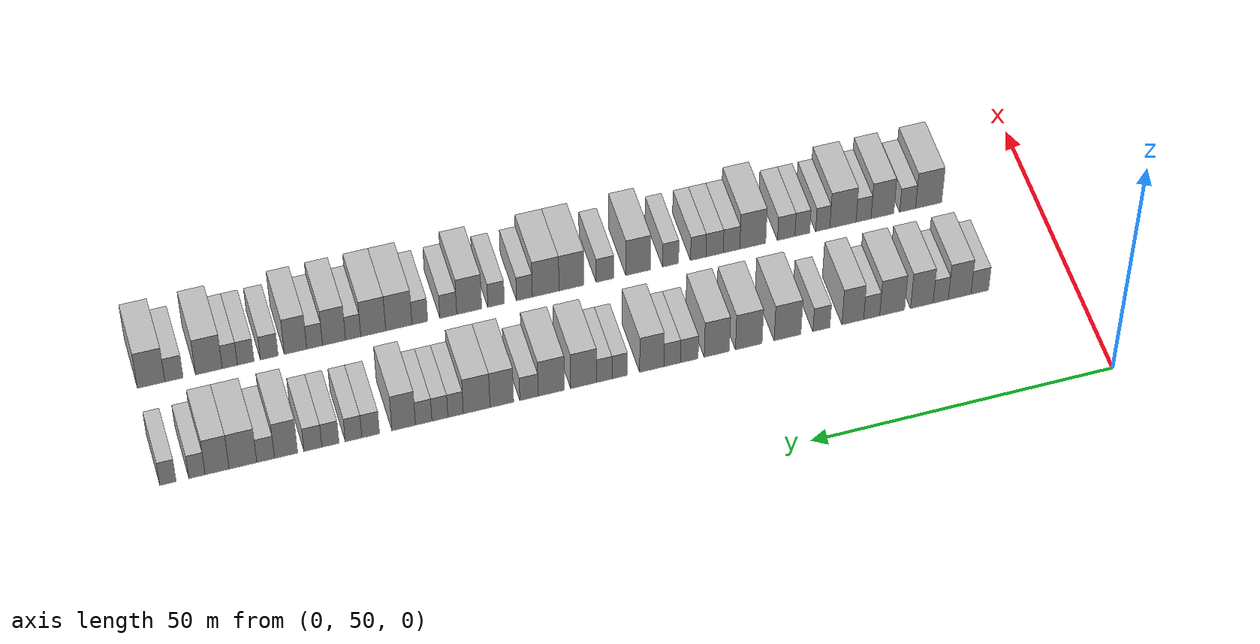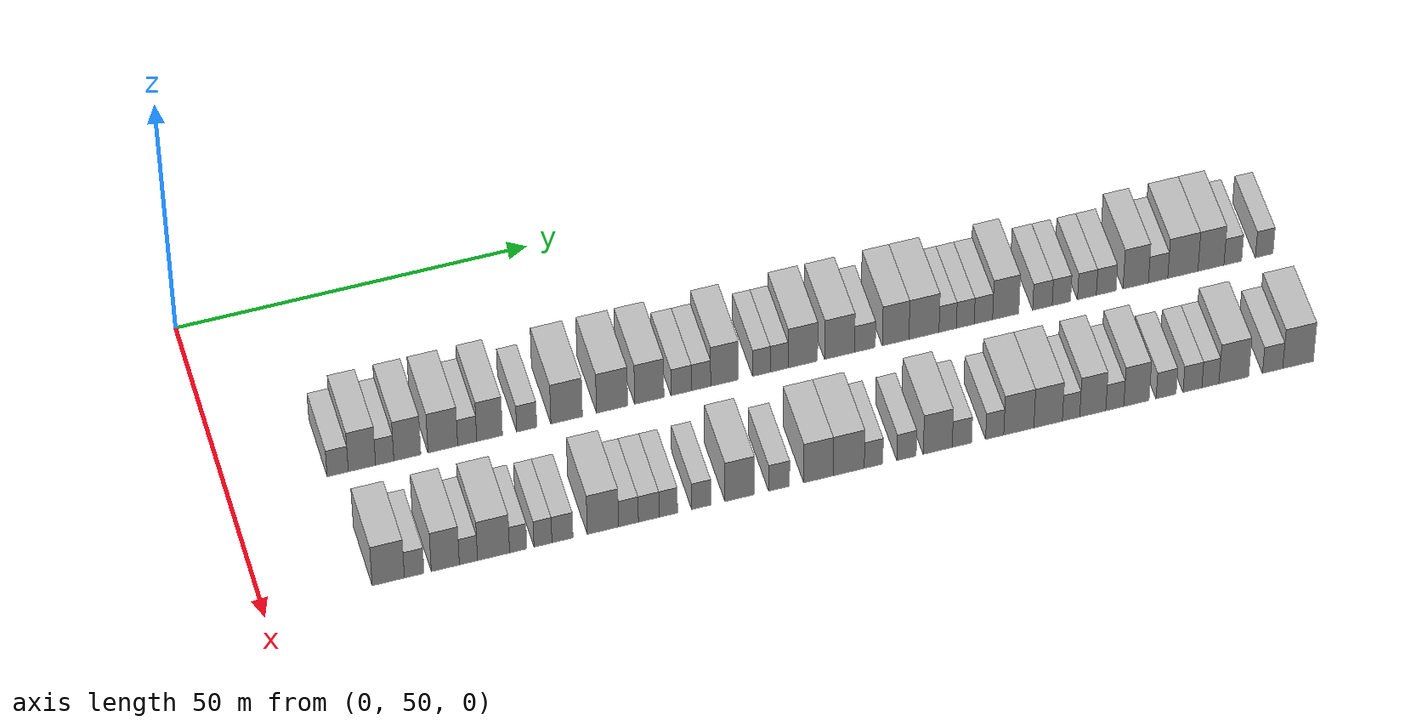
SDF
<sdf version="1.6">
 <world name="default">
  <model name="building_68">
   <static>1</static>
   <pose>25.0000 65.1902 0 0.000000 0.000000 0.000000</pose>
   <link name="link">
    <pose>0 0 3.00 0 0 0</pose>
    <collision name="collision"><geometry><box><size>10.0000 2.9733 6.0000</size></box></geometry></collision>
    <visual name="visual">
     <cast_shadows>0</cast_shadows>
     <geometry><box><size>10.0000 2.9733 6.0000</size></box></geometry>
     <material>
      <script>
       <uri>model://HANNAS_wall/materials/scripts</uri>
       <uri>model://HANNAS_wall/materials/textures</uri>
       <name>vrc/HANNAS_wall</name>
      </script>
     </material>
    </visual>
   </link>
  </model>
  <model name="building_69">
   <static>1</static>
   <pose>25.0000 68.5899 0 0.000000 0.000000 0.000000</pose>
   <link name="link">
    <pose>0 0 4.50 0 0 0</pose>
    <collision name="collision"><geometry><box><size>10.0000 3.8260 9.0000</size></box></geometry></collision>
    <visual name="visual">
     <cast_shadows>0</cast_shadows>
     <geometry><box><size>10.0000 3.8260 9.0000</size></box></geometry>
     <material>
      <script>
       <uri>model://HANNAS_wall/materials/scripts</uri>
       <uri>model://HANNAS_wall/materials/textures</uri>
       <name>vrc/HANNAS_wall</name>
      </script>
     </material>
    </visual>
   </link>
  </model>
  <model name="building_70">
   <static>1</static>
   <pose>25.0000 71.7838 0 0.000000 0.000000 0.000000</pose>
   <link name="link">
    <pose>0 0 3.00 0 0 0</pose>
    <collision name="collision"><geometry><box><size>10.0000 2.5617 6.0000</size></box></geometry></collision>
    <visual name="visual">
     <cast_shadows>0</cast_shadows>
     <geometry><box><size>10.0000 2.5617 6.0000</size></box></geometry>
     <material>
      <script>
       <uri>model://HANNAS_wall/materials/scripts</uri>
       <uri>model://HANNAS_wall/materials/textures</uri>
       <name>vrc/HANNAS_wall</name>
      </script>
     </material>
    </visual>
   </link>
  </model>
  <model name="building_71">
   <static>1</static>
   <pose>25.0000 74.9590 0 0.000000 0.000000 0.000000</pose>
   <link name="link">
    <pose>0 0 4.50 0 0 0</pose>
    <collision name="collision"><geometry><box><size>10.0000 3.7886 9.0000</size></box></geometry></collision>
    <visual name="visual">
     <cast_shadows>0</cast_shadows>
     <geometry><box><size>10.0000 3.7886 9.0000</size></box></geometry>
     <material>
      <script>
       <uri>model://HANNAS_wall/materials/scripts</uri>
       <uri>model://HANNAS_wall/materials/textures</uri>
       <name>vrc/HANNAS_wall</name>
      </script>
     </material>
    </visual>
   </link>
  </model>
  <model name="building_72">
   <static>1</static>
   <pose>25.0000 79.9435 0 0.000000 0.000000 0.000000</pose>
   <link name="link">
    <pose>0 0 4.50 0 0 0</pose>
    <collision name="collision"><geometry><box><size>10.0000 4.1804 9.0000</size></box></geometry></collision>
    <visual name="visual">
     <cast_shadows>0</cast_shadows>
     <geometry><box><size>10.0000 4.1804 9.0000</size></box></geometry>
     <material>
      <script>
       <uri>model://HANNAS_wall/materials/scripts</uri>
       <uri>model://HANNAS_wall/materials/textures</uri>
       <name>vrc/HANNAS_wall</name>
      </script>
     </material>
    </visual>
   </link>
  </model>
  <model name="building_73">
   <static>1</static>
   <pose>25.0000 83.3761 0 0.000000 0.000000 0.000000</pose>
   <link name="link">
    <pose>0 0 3.00 0 0 0</pose>
    <collision name="collision"><geometry><box><size>10.0000 2.6849 6.0000</size></box></geometry></collision>
    <visual name="visual">
     <cast_shadows>0</cast_shadows>
     <geometry><box><size>10.0000 2.6849 6.0000</size></box></geometry>
     <material>
      <script>
       <uri>model://HANNAS_wall/materials/scripts</uri>
       <uri>model://HANNAS_wall/materials/textures</uri>
       <name>vrc/HANNAS_wall</name>
      </script>
     </material>
    </visual>
   </link>
  </model>
  <model name="building_74">
   <static>1</static>
   <pose>25.0000 86.5325 0 0.000000 0.000000 0.000000</pose>
   <link name="link">
    <pose>0 0 4.50 0 0 0</pose>
    <collision name="collision"><geometry><box><size>10.0000 3.6280 9.0000</size></box></geometry></collision>
    <visual name="visual">
     <cast_shadows>0</cast_shadows>
     <geometry><box><size>10.0000 3.6280 9.0000</size></box></geometry>
     <material>
      <script>
       <uri>model://HANNAS_wall/materials/scripts</uri>
       <uri>model://HANNAS_wall/materials/textures</uri>
       <name>vrc/HANNAS_wall</name>
      </script>
     </material>
    </visual>
   </link>
  </model>
  <model name="building_75">
   <static>1</static>
   <pose>25.0000 91.7664 0 0.000000 0.000000 0.000000</pose>
   <link name="link">
    <pose>0 0 3.00 0 0 0</pose>
    <collision name="collision"><geometry><box><size>10.0000 2.8398 6.0000</size></box></geometry></collision>
    <visual name="visual">
     <cast_shadows>0</cast_shadows>
     <geometry><box><size>10.0000 2.8398 6.0000</size></box></geometry>
     <material>
      <script>
       <uri>model://HANNAS_wall/materials/scripts</uri>
       <uri>model://HANNAS_wall/materials/textures</uri>
       <name>vrc/HANNAS_wall</name>
      </script>
     </material>
    </visual>
   </link>
  </model>
  <model name="building_76">
   <static>1</static>
   <pose>25.0000 97.4119 0 0.000000 0.000000 0.000000</pose>
   <link name="link">
    <pose>0 0 4.50 0 0 0</pose>
    <collision name="collision"><geometry><box><size>10.0000 4.4512 9.0000</size></box></geometry></collision>
    <visual name="visual">
     <cast_shadows>0</cast_shadows>
     <geometry><box><size>10.0000 4.4512 9.0000</size></box></geometry>
     <material>
      <script>
       <uri>model://HANNAS_wall/materials/scripts</uri>
       <uri>model://HANNAS_wall/materials/textures</uri>
       <name>vrc/HANNAS_wall</name>
      </script>
     </material>
    </visual>
   </link>
  </model>
  <model name="building_77">
   <static>1</static>
   <pose>25.0000 103.8426 0 0.000000 0.000000 0.000000</pose>
   <link name="link">
    <pose>0 0 4.50 0 0 0</pose>
    <collision name="collision"><geometry><box><size>10.0000 4.4103 9.0000</size></box></geometry></collision>
    <visual name="visual">
     <cast_shadows>0</cast_shadows>
     <geometry><box><size>10.0000 4.4103 9.0000</size></box></geometry>
     <material>
      <script>
       <uri>model://HANNAS_wall/materials/scripts</uri>
       <uri>model://HANNAS_wall/materials/textures</uri>
       <name>vrc/HANNAS_wall</name>
      </script>
     </material>
    </visual>
   </link>
  </model>
  <model name="building_78">
   <static>1</static>
   <pose>25.0000 109.1244 0 0.000000 0.000000 0.000000</pose>
   <link name="link">
    <pose>0 0 4.50 0 0 0</pose>
    <collision name="collision"><geometry><box><size>10.0000 4.1532 9.0000</size></box></geometry></collision>
    <visual name="visual">
     <cast_shadows>0</cast_shadows>
     <geometry><box><size>10.0000 4.1532 9.0000</size></box></geometry>
     <material>
      <script>
       <uri>model://HANNAS_wall/materials/scripts</uri>
       <uri>model://HANNAS_wall/materials/textures</uri>
       <name>vrc/HANNAS_wall</name>
      </script>
     </material>
    </visual>
   </link>
  </model>
  <model name="building_79">
   <static>1</static>
   <pose>25.0000 113.6657 0 0.000000 0.000000 0.000000</pose>
   <link name="link">
    <pose>0 0 3.00 0 0 0</pose>
    <collision name="collision"><geometry><box><size>10.0000 2.9294 6.0000</size></box></geometry></collision>
    <visual name="visual">
     <cast_shadows>0</cast_shadows>
     <geometry><box><size>10.0000 2.9294 6.0000</size></box></geometry>
     <material>
      <script>
       <uri>model://HANNAS_wall/materials/scripts</uri>
       <uri>model://HANNAS_wall/materials/textures</uri>
       <name>vrc/HANNAS_wall</name>
      </script>
     </material>
    </visual>
   </link>
  </model>
  <model name="building_80">
   <static>1</static>
   <pose>25.0000 116.4867 0 0.000000 0.000000 0.000000</pose>
   <link name="link">
    <pose>0 0 3.00 0 0 0</pose>
    <collision name="collision"><geometry><box><size>10.0000 2.7126 6.0000</size></box></geometry></collision>
    <visual name="visual">
     <cast_shadows>0</cast_shadows>
     <geometry><box><size>10.0000 2.7126 6.0000</size></box></geometry>
     <material>
      <script>
       <uri>model://HANNAS_wall/materials/scripts</uri>
       <uri>model://HANNAS_wall/materials/textures</uri>
       <name>vrc/HANNAS_wall</name>
      </script>
     </material>
    </visual>
   </link>
  </model>
  <model name="building_81">
   <static>1</static>
   <pose>25.0000 119.8310 0 0.000000 0.000000 0.000000</pose>
   <link name="link">
    <pose>0 0 4.50 0 0 0</pose>
    <collision name="collision"><geometry><box><size>10.0000 3.9760 9.0000</size></box></geometry></collision>
    <visual name="visual">
     <cast_shadows>0</cast_shadows>
     <geometry><box><size>10.0000 3.9760 9.0000</size></box></geometry>
     <material>
      <script>
       <uri>model://HANNAS_wall/materials/scripts</uri>
       <uri>model://HANNAS_wall/materials/textures</uri>
       <name>vrc/HANNAS_wall</name>
      </script>
     </material>
    </visual>
   </link>
  </model>
  <model name="building_82">
   <static>1</static>
   <pose>25.0000 125.0758 0 0.000000 0.000000 0.000000</pose>
   <link name="link">
    <pose>0 0 3.00 0 0 0</pose>
    <collision name="collision"><geometry><box><size>10.0000 2.5136 6.0000</size></box></geometry></collision>
    <visual name="visual">
     <cast_shadows>0</cast_shadows>
     <geometry><box><size>10.0000 2.5136 6.0000</size></box></geometry>
     <material>
      <script>
       <uri>model://HANNAS_wall/materials/scripts</uri>
       <uri>model://HANNAS_wall/materials/textures</uri>
       <name>vrc/HANNAS_wall</name>
      </script>
     </material>
    </visual>
   </link>
  </model>
  <model name="building_83">
   <static>1</static>
   <pose>25.0000 127.6010 0 0.000000 0.000000 0.000000</pose>
   <link name="link">
    <pose>0 0 3.00 0 0 0</pose>
    <collision name="collision"><geometry><box><size>10.0000 2.5366 6.0000</size></box></geometry></collision>
    <visual name="visual">
     <cast_shadows>0</cast_shadows>
     <geometry><box><size>10.0000 2.5366 6.0000</size></box></geometry>
     <material>
      <script>
       <uri>model://HANNAS_wall/materials/scripts</uri>
       <uri>model://HANNAS_wall/materials/textures</uri>
       <name>vrc/HANNAS_wall</name>
      </script>
     </material>
    </visual>
   </link>
  </model>
  <model name="building_84">
   <static>1</static>
   <pose>25.0000 130.9781 0 0.000000 0.000000 0.000000</pose>
   <link name="link">
    <pose>0 0 4.50 0 0 0</pose>
    <collision name="collision"><geometry><box><size>10.0000 4.2175 9.0000</size></box></geometry></collision>
    <visual name="visual">
     <cast_shadows>0</cast_shadows>
     <geometry><box><size>10.0000 4.2175 9.0000</size></box></geometry>
     <material>
      <script>
       <uri>model://HANNAS_wall/materials/scripts</uri>
       <uri>model://HANNAS_wall/materials/textures</uri>
       <name>vrc/HANNAS_wall</name>
      </script>
     </material>
    </visual>
   </link>
  </model>
  <model name="building_85">
   <static>1</static>
   <pose>25.0000 136.2274 0 0.000000 0.000000 0.000000</pose>
   <link name="link">
    <pose>0 0 4.50 0 0 0</pose>
    <collision name="collision"><geometry><box><size>10.0000 4.2811 9.0000</size></box></geometry></collision>
    <visual name="visual">
     <cast_shadows>0</cast_shadows>
     <geometry><box><size>10.0000 4.2811 9.0000</size></box></geometry>
     <material>
      <script>
       <uri>model://HANNAS_wall/materials/scripts</uri>
       <uri>model://HANNAS_wall/materials/textures</uri>
       <name>vrc/HANNAS_wall</name>
      </script>
     </material>
    </visual>
   </link>
  </model>
  <model name="building_86">
   <static>1</static>
   <pose>25.0000 139.8609 0 0.000000 0.000000 0.000000</pose>
   <link name="link">
    <pose>0 0 3.00 0 0 0</pose>
    <collision name="collision"><geometry><box><size>10.0000 2.9859 6.0000</size></box></geometry></collision>
    <visual name="visual">
     <cast_shadows>0</cast_shadows>
     <geometry><box><size>10.0000 2.9859 6.0000</size></box></geometry>
     <material>
      <script>
       <uri>model://HANNAS_wall/materials/scripts</uri>
       <uri>model://HANNAS_wall/materials/textures</uri>
       <name>vrc/HANNAS_wall</name>
      </script>
     </material>
    </visual>
   </link>
  </model>
  <model name="building_87">
   <static>1</static>
   <pose>25.0000 144.2637 0 0.000000 0.000000 0.000000</pose>
   <link name="link">
    <pose>0 0 4.50 0 0 0</pose>
    <collision name="collision"><geometry><box><size>10.0000 3.8197 9.0000</size></box></geometry></collision>
    <visual name="visual">
     <cast_shadows>0</cast_shadows>
     <geometry><box><size>10.0000 3.8197 9.0000</size></box></geometry>
     <material>
      <script>
       <uri>model://HANNAS_wall/materials/scripts</uri>
       <uri>model://HANNAS_wall/materials/textures</uri>
       <name>vrc/HANNAS_wall</name>
      </script>
     </material>
    </visual>
   </link>
  </model>
  <model name="building_88">
   <static>1</static>
   <pose>25.0000 148.3314 0 0.000000 0.000000 0.000000</pose>
   <link name="link">
    <pose>0 0 4.50 0 0 0</pose>
    <collision name="collision"><geometry><box><size>10.0000 4.3157 9.0000</size></box></geometry></collision>
    <visual name="visual">
     <cast_shadows>0</cast_shadows>
     <geometry><box><size>10.0000 4.3157 9.0000</size></box></geometry>
     <material>
      <script>
       <uri>model://HANNAS_wall/materials/scripts</uri>
       <uri>model://HANNAS_wall/materials/textures</uri>
       <name>vrc/HANNAS_wall</name>
      </script>
     </material>
    </visual>
   </link>
  </model>
  <model name="building_89">
   <static>1</static>
   <pose>25.0000 151.7379 0 0.000000 0.000000 0.000000</pose>
   <link name="link">
    <pose>0 0 3.00 0 0 0</pose>
    <collision name="collision"><geometry><box><size>10.0000 2.4973 6.0000</size></box></geometry></collision>
    <visual name="visual">
     <cast_shadows>0</cast_shadows>
     <geometry><box><size>10.0000 2.4973 6.0000</size></box></geometry>
     <material>
      <script>
       <uri>model://HANNAS_wall/materials/scripts</uri>
       <uri>model://HANNAS_wall/materials/textures</uri>
       <name>vrc/HANNAS_wall</name>
      </script>
     </material>
    </visual>
   </link>
  </model>
  <model name="building_90">
   <static>1</static>
   <pose>25.0000 154.2682 0 0.000000 0.000000 0.000000</pose>
   <link name="link">
    <pose>0 0 3.00 0 0 0</pose>
    <collision name="collision"><geometry><box><size>10.0000 2.5633 6.0000</size></box></geometry></collision>
    <visual name="visual">
     <cast_shadows>0</cast_shadows>
     <geometry><box><size>10.0000 2.5633 6.0000</size></box></geometry>
     <material>
      <script>
       <uri>model://HANNAS_wall/materials/scripts</uri>
       <uri>model://HANNAS_wall/materials/textures</uri>
       <name>vrc/HANNAS_wall</name>
      </script>
     </material>
    </visual>
   </link>
  </model>
  <model name="building_91">
   <static>1</static>
   <pose>25.0000 156.8752 0 0.000000 0.000000 0.000000</pose>
   <link name="link">
    <pose>0 0 3.00 0 0 0</pose>
    <collision name="collision"><geometry><box><size>10.0000 2.6505 6.0000</size></box></geometry></collision>
    <visual name="visual">
     <cast_shadows>0</cast_shadows>
     <geometry><box><size>10.0000 2.6505 6.0000</size></box></geometry>
     <material>
      <script>
       <uri>model://HANNAS_wall/materials/scripts</uri>
       <uri>model://HANNAS_wall/materials/textures</uri>
       <name>vrc/HANNAS_wall</name>
      </script>
     </material>
    </visual>
   </link>
  </model>
  <model name="building_92">
   <static>1</static>
   <pose>25.0000 160.0891 0 0.000000 0.000000 0.000000</pose>
   <link name="link">
    <pose>0 0 4.50 0 0 0</pose>
    <collision name="collision"><geometry><box><size>10.0000 3.7773 9.0000</size></box></geometry></collision>
    <visual name="visual">
     <cast_shadows>0</cast_shadows>
     <geometry><box><size>10.0000 3.7773 9.0000</size></box></geometry>
     <material>
      <script>
       <uri>model://HANNAS_wall/materials/scripts</uri>
       <uri>model://HANNAS_wall/materials/textures</uri>
       <name>vrc/HANNAS_wall</name>
      </script>
     </material>
    </visual>
   </link>
  </model>
  <model name="building_93">
   <static>1</static>
   <pose>25.0000 165.3884 0 0.000000 0.000000 0.000000</pose>
   <link name="link">
    <pose>0 0 3.00 0 0 0</pose>
    <collision name="collision"><geometry><box><size>10.0000 2.8213 6.0000</size></box></geometry></collision>
    <visual name="visual">
     <cast_shadows>0</cast_shadows>
     <geometry><box><size>10.0000 2.8213 6.0000</size></box></geometry>
     <material>
      <script>
       <uri>model://HANNAS_wall/materials/scripts</uri>
       <uri>model://HANNAS_wall/materials/textures</uri>
       <name>vrc/HANNAS_wall</name>
      </script>
     </material>
    </visual>
   </link>
  </model>
  <model name="building_94">
   <static>1</static>
   <pose>25.0000 168.1233 0 0.000000 0.000000 0.000000</pose>
   <link name="link">
    <pose>0 0 3.00 0 0 0</pose>
    <collision name="collision"><geometry><box><size>10.0000 2.6483 6.0000</size></box></geometry></collision>
    <visual name="visual">
     <cast_shadows>0</cast_shadows>
     <geometry><box><size>10.0000 2.6483 6.0000</size></box></geometry>
     <material>
      <script>
       <uri>model://HANNAS_wall/materials/scripts</uri>
       <uri>model://HANNAS_wall/materials/textures</uri>
       <name>vrc/HANNAS_wall</name>
      </script>
     </material>
    </visual>
   </link>
  </model>
  <model name="building_95">
   <static>1</static>
   <pose>25.0000 171.8094 0 0.000000 0.000000 0.000000</pose>
   <link name="link">
    <pose>0 0 3.00 0 0 0</pose>
    <collision name="collision"><geometry><box><size>10.0000 2.7240 6.0000</size></box></geometry></collision>
    <visual name="visual">
     <cast_shadows>0</cast_shadows>
     <geometry><box><size>10.0000 2.7240 6.0000</size></box></geometry>
     <material>
      <script>
       <uri>model://HANNAS_wall/materials/scripts</uri>
       <uri>model://HANNAS_wall/materials/textures</uri>
       <name>vrc/HANNAS_wall</name>
      </script>
     </material>
    </visual>
   </link>
  </model>
  <model name="building_96">
   <static>1</static>
   <pose>25.0000 174.6036 0 0.000000 0.000000 0.000000</pose>
   <link name="link">
    <pose>0 0 3.00 0 0 0</pose>
    <collision name="collision"><geometry><box><size>10.0000 2.8644 6.0000</size></box></geometry></collision>
    <visual name="visual">
     <cast_shadows>0</cast_shadows>
     <geometry><box><size>10.0000 2.8644 6.0000</size></box></geometry>
     <material>
      <script>
       <uri>model://HANNAS_wall/materials/scripts</uri>
       <uri>model://HANNAS_wall/materials/textures</uri>
       <name>vrc/HANNAS_wall</name>
      </script>
     </material>
    </visual>
   </link>
  </model>
  <model name="building_97">
   <static>1</static>
   <pose>25.0000 178.8717 0 0.000000 0.000000 0.000000</pose>
   <link name="link">
    <pose>0 0 4.50 0 0 0</pose>
    <collision name="collision"><geometry><box><size>10.0000 3.6719 9.0000</size></box></geometry></collision>
    <visual name="visual">
     <cast_shadows>0</cast_shadows>
     <geometry><box><size>10.0000 3.6719 9.0000</size></box></geometry>
     <material>
      <script>
       <uri>model://HANNAS_wall/materials/scripts</uri>
       <uri>model://HANNAS_wall/materials/textures</uri>
       <name>vrc/HANNAS_wall</name>
      </script>
     </material>
    </visual>
   </link>
  </model>
  <model name="building_98">
   <static>1</static>
   <pose>25.0000 182.1147 0 0.000000 0.000000 0.000000</pose>
   <link name="link">
    <pose>0 0 3.00 0 0 0</pose>
    <collision name="collision"><geometry><box><size>10.0000 2.8141 6.0000</size></box></geometry></collision>
    <visual name="visual">
     <cast_shadows>0</cast_shadows>
     <geometry><box><size>10.0000 2.8141 6.0000</size></box></geometry>
     <material>
      <script>
       <uri>model://HANNAS_wall/materials/scripts</uri>
       <uri>model://HANNAS_wall/materials/textures</uri>
       <name>vrc/HANNAS_wall</name>
      </script>
     </material>
    </visual>
   </link>
  </model>
  <model name="building_99">
   <static>1</static>
   <pose>25.0000 185.7136 0 0.000000 0.000000 0.000000</pose>
   <link name="link">
    <pose>0 0 4.50 0 0 0</pose>
    <collision name="collision"><geometry><box><size>10.0000 4.3838 9.0000</size></box></geometry></collision>
    <visual name="visual">
     <cast_shadows>0</cast_shadows>
     <geometry><box><size>10.0000 4.3838 9.0000</size></box></geometry>
     <material>
      <script>
       <uri>model://HANNAS_wall/materials/scripts</uri>
       <uri>model://HANNAS_wall/materials/textures</uri>
       <name>vrc/HANNAS_wall</name>
      </script>
     </material>
    </visual>
   </link>
  </model>
  <model name="building_100">
   <static>1</static>
   <pose>25.0000 189.7976 0 0.000000 0.000000 0.000000</pose>
   <link name="link">
    <pose>0 0 4.50 0 0 0</pose>
    <collision name="collision"><geometry><box><size>10.0000 3.7842 9.0000</size></box></geometry></collision>
    <visual name="visual">
     <cast_shadows>0</cast_shadows>
     <geometry><box><size>10.0000 3.7842 9.0000</size></box></geometry>
     <material>
      <script>
       <uri>model://HANNAS_wall/materials/scripts</uri>
       <uri>model://HANNAS_wall/materials/textures</uri>
       <name>vrc/HANNAS_wall</name>
      </script>
     </material>
    </visual>
   </link>
  </model>
  <model name="building_101">
   <static>1</static>
   <pose>25.0000 192.9743 0 0.000000 0.000000 0.000000</pose>
   <link name="link">
    <pose>0 0 3.00 0 0 0</pose>
    <collision name="collision"><geometry><box><size>10.0000 2.5693 6.0000</size></box></geometry></collision>
    <visual name="visual">
     <cast_shadows>0</cast_shadows>
     <geometry><box><size>10.0000 2.5693 6.0000</size></box></geometry>
     <material>
      <script>
       <uri>model://HANNAS_wall/materials/scripts</uri>
       <uri>model://HANNAS_wall/materials/textures</uri>
       <name>vrc/HANNAS_wall</name>
      </script>
     </material>
    </visual>
   </link>
  </model>
  <model name="building_102">
   <static>1</static>
   <pose>25.0000 197.5445 0 0.000000 0.000000 0.000000</pose>
   <link name="link">
    <pose>0 0 3.00 0 0 0</pose>
    <collision name="collision"><geometry><box><size>10.0000 2.5710 6.0000</size></box></geometry></collision>
    <visual name="visual">
     <cast_shadows>0</cast_shadows>
     <geometry><box><size>10.0000 2.5710 6.0000</size></box></geometry>
     <material>
      <script>
       <uri>model://HANNAS_wall/materials/scripts</uri>
       <uri>model://HANNAS_wall/materials/textures</uri>
       <name>vrc/HANNAS_wall</name>
      </script>
     </material>
    </visual>
   </link>
  </model>
  <model name="building_172">
   <static>1</static>
   <pose>44.0000 67.2906 0 0.000000 0.000000 0.000000</pose>
   <link name="link">
    <pose>0 0 4.50 0 0 0</pose>
    <collision name="collision"><geometry><box><size>10.0000 4.4852 9.0000</size></box></geometry></collision>
    <visual name="visual">
     <cast_shadows>0</cast_shadows>
     <geometry><box><size>10.0000 4.4852 9.0000</size></box></geometry>
     <material>
      <script>
       <uri>model://HANNAS_wall/materials/scripts</uri>
       <uri>model://HANNAS_wall/materials/textures</uri>
       <name>vrc/HANNAS_wall</name>
      </script>
     </material>
    </visual>
   </link>
  </model>
  <model name="building_173">
   <static>1</static>
   <pose>44.0000 70.8987 0 0.000000 0.000000 0.000000</pose>
   <link name="link">
    <pose>0 0 3.00 0 0 0</pose>
    <collision name="collision"><geometry><box><size>10.0000 2.7310 6.0000</size></box></geometry></collision>
    <visual name="visual">
     <cast_shadows>0</cast_shadows>
     <geometry><box><size>10.0000 2.7310 6.0000</size></box></geometry>
     <material>
      <script>
       <uri>model://HANNAS_wall/materials/scripts</uri>
       <uri>model://HANNAS_wall/materials/textures</uri>
       <name>vrc/HANNAS_wall</name>
      </script>
     </material>
    </visual>
   </link>
  </model>
  <model name="building_174">
   <static>1</static>
   <pose>44.0000 75.2174 0 0.000000 0.000000 0.000000</pose>
   <link name="link">
    <pose>0 0 4.50 0 0 0</pose>
    <collision name="collision"><geometry><box><size>10.0000 3.9062 9.0000</size></box></geometry></collision>
    <visual name="visual">
     <cast_shadows>0</cast_shadows>
     <geometry><box><size>10.0000 3.9062 9.0000</size></box></geometry>
     <material>
      <script>
       <uri>model://HANNAS_wall/materials/scripts</uri>
       <uri>model://HANNAS_wall/materials/textures</uri>
       <name>vrc/HANNAS_wall</name>
      </script>
     </material>
    </visual>
   </link>
  </model>
  <model name="building_175">
   <static>1</static>
   <pose>44.0000 78.4382 0 0.000000 0.000000 0.000000</pose>
   <link name="link">
    <pose>0 0 3.00 0 0 0</pose>
    <collision name="collision"><geometry><box><size>10.0000 2.5354 6.0000</size></box></geometry></collision>
    <visual name="visual">
     <cast_shadows>0</cast_shadows>
     <geometry><box><size>10.0000 2.5354 6.0000</size></box></geometry>
     <material>
      <script>
       <uri>model://HANNAS_wall/materials/scripts</uri>
       <uri>model://HANNAS_wall/materials/textures</uri>
       <name>vrc/HANNAS_wall</name>
      </script>
     </material>
    </visual>
   </link>
  </model>
  <model name="building_176">
   <static>1</static>
   <pose>44.0000 81.9422 0 0.000000 0.000000 0.000000</pose>
   <link name="link">
    <pose>0 0 4.50 0 0 0</pose>
    <collision name="collision"><geometry><box><size>10.0000 4.4727 9.0000</size></box></geometry></collision>
    <visual name="visual">
     <cast_shadows>0</cast_shadows>
     <geometry><box><size>10.0000 4.4727 9.0000</size></box></geometry>
     <material>
      <script>
       <uri>model://HANNAS_wall/materials/scripts</uri>
       <uri>model://HANNAS_wall/materials/textures</uri>
       <name>vrc/HANNAS_wall</name>
      </script>
     </material>
    </visual>
   </link>
  </model>
  <model name="building_177">
   <static>1</static>
   <pose>44.0000 85.3836 0 0.000000 0.000000 0.000000</pose>
   <link name="link">
    <pose>0 0 3.00 0 0 0</pose>
    <collision name="collision"><geometry><box><size>10.0000 2.4101 6.0000</size></box></geometry></collision>
    <visual name="visual">
     <cast_shadows>0</cast_shadows>
     <geometry><box><size>10.0000 2.4101 6.0000</size></box></geometry>
     <material>
      <script>
       <uri>model://HANNAS_wall/materials/scripts</uri>
       <uri>model://HANNAS_wall/materials/textures</uri>
       <name>vrc/HANNAS_wall</name>
      </script>
     </material>
    </visual>
   </link>
  </model>
  <model name="building_178">
   <static>1</static>
   <pose>44.0000 88.8430 0 0.000000 0.000000 0.000000</pose>
   <link name="link">
    <pose>0 0 3.00 0 0 0</pose>
    <collision name="collision"><geometry><box><size>10.0000 2.5086 6.0000</size></box></geometry></collision>
    <visual name="visual">
     <cast_shadows>0</cast_shadows>
     <geometry><box><size>10.0000 2.5086 6.0000</size></box></geometry>
     <material>
      <script>
       <uri>model://HANNAS_wall/materials/scripts</uri>
       <uri>model://HANNAS_wall/materials/textures</uri>
       <name>vrc/HANNAS_wall</name>
      </script>
     </material>
    </visual>
   </link>
  </model>
  <model name="building_179">
   <static>1</static>
   <pose>44.0000 91.5720 0 0.000000 0.000000 0.000000</pose>
   <link name="link">
    <pose>0 0 3.00 0 0 0</pose>
    <collision name="collision"><geometry><box><size>10.0000 2.9494 6.0000</size></box></geometry></collision>
    <visual name="visual">
     <cast_shadows>0</cast_shadows>
     <geometry><box><size>10.0000 2.9494 6.0000</size></box></geometry>
     <material>
      <script>
       <uri>model://HANNAS_wall/materials/scripts</uri>
       <uri>model://HANNAS_wall/materials/textures</uri>
       <name>vrc/HANNAS_wall</name>
      </script>
     </material>
    </visual>
   </link>
  </model>
  <model name="building_180">
   <static>1</static>
   <pose>44.0000 97.2361 0 0.000000 0.000000 0.000000</pose>
   <link name="link">
    <pose>0 0 4.50 0 0 0</pose>
    <collision name="collision"><geometry><box><size>10.0000 4.3789 9.0000</size></box></geometry></collision>
    <visual name="visual">
     <cast_shadows>0</cast_shadows>
     <geometry><box><size>10.0000 4.3789 9.0000</size></box></geometry>
     <material>
      <script>
       <uri>model://HANNAS_wall/materials/scripts</uri>
       <uri>model://HANNAS_wall/materials/textures</uri>
       <name>vrc/HANNAS_wall</name>
      </script>
     </material>
    </visual>
   </link>
  </model>
  <model name="building_181">
   <static>1</static>
   <pose>44.0000 100.8200 0 0.000000 0.000000 0.000000</pose>
   <link name="link">
    <pose>0 0 3.00 0 0 0</pose>
    <collision name="collision"><geometry><box><size>10.0000 2.7889 6.0000</size></box></geometry></collision>
    <visual name="visual">
     <cast_shadows>0</cast_shadows>
     <geometry><box><size>10.0000 2.7889 6.0000</size></box></geometry>
     <material>
      <script>
       <uri>model://HANNAS_wall/materials/scripts</uri>
       <uri>model://HANNAS_wall/materials/textures</uri>
       <name>vrc/HANNAS_wall</name>
      </script>
     </material>
    </visual>
   </link>
  </model>
  <model name="building_182">
   <static>1</static>
   <pose>44.0000 103.6737 0 0.000000 0.000000 0.000000</pose>
   <link name="link">
    <pose>0 0 3.00 0 0 0</pose>
    <collision name="collision"><geometry><box><size>10.0000 2.9185 6.0000</size></box></geometry></collision>
    <visual name="visual">
     <cast_shadows>0</cast_shadows>
     <geometry><box><size>10.0000 2.9185 6.0000</size></box></geometry>
     <material>
      <script>
       <uri>model://HANNAS_wall/materials/scripts</uri>
       <uri>model://HANNAS_wall/materials/textures</uri>
       <name>vrc/HANNAS_wall</name>
      </script>
     </material>
    </visual>
   </link>
  </model>
  <model name="building_183">
   <static>1</static>
   <pose>44.0000 106.4220 0 0.000000 0.000000 0.000000</pose>
   <link name="link">
    <pose>0 0 3.00 0 0 0</pose>
    <collision name="collision"><geometry><box><size>10.0000 2.5779 6.0000</size></box></geometry></collision>
    <visual name="visual">
     <cast_shadows>0</cast_shadows>
     <geometry><box><size>10.0000 2.5779 6.0000</size></box></geometry>
     <material>
      <script>
       <uri>model://HANNAS_wall/materials/scripts</uri>
       <uri>model://HANNAS_wall/materials/textures</uri>
       <name>vrc/HANNAS_wall</name>
      </script>
     </material>
    </visual>
   </link>
  </model>
  <model name="building_184">
   <static>1</static>
   <pose>44.0000 111.0520 0 0.000000 0.000000 0.000000</pose>
   <link name="link">
    <pose>0 0 3.00 0 0 0</pose>
    <collision name="collision"><geometry><box><size>10.0000 2.6821 6.0000</size></box></geometry></collision>
    <visual name="visual">
     <cast_shadows>0</cast_shadows>
     <geometry><box><size>10.0000 2.6821 6.0000</size></box></geometry>
     <material>
      <script>
       <uri>model://HANNAS_wall/materials/scripts</uri>
       <uri>model://HANNAS_wall/materials/textures</uri>
       <name>vrc/HANNAS_wall</name>
      </script>
     </material>
    </visual>
   </link>
  </model>
  <model name="building_185">
   <static>1</static>
   <pose>44.0000 116.4689 0 0.000000 0.000000 0.000000</pose>
   <link name="link">
    <pose>0 0 4.50 0 0 0</pose>
    <collision name="collision"><geometry><box><size>10.0000 4.1518 9.0000</size></box></geometry></collision>
    <visual name="visual">
     <cast_shadows>0</cast_shadows>
     <geometry><box><size>10.0000 4.1518 9.0000</size></box></geometry>
     <material>
      <script>
       <uri>model://HANNAS_wall/materials/scripts</uri>
       <uri>model://HANNAS_wall/materials/textures</uri>
       <name>vrc/HANNAS_wall</name>
      </script>
     </material>
    </visual>
   </link>
  </model>
  <model name="building_186">
   <static>1</static>
   <pose>44.0000 122.0194 0 0.000000 0.000000 0.000000</pose>
   <link name="link">
    <pose>0 0 3.00 0 0 0</pose>
    <collision name="collision"><geometry><box><size>10.0000 2.9493 6.0000</size></box></geometry></collision>
    <visual name="visual">
     <cast_shadows>0</cast_shadows>
     <geometry><box><size>10.0000 2.9493 6.0000</size></box></geometry>
     <material>
      <script>
       <uri>model://HANNAS_wall/materials/scripts</uri>
       <uri>model://HANNAS_wall/materials/textures</uri>
       <name>vrc/HANNAS_wall</name>
      </script>
     </material>
    </visual>
   </link>
  </model>
  <model name="building_187">
   <static>1</static>
   <pose>44.0000 127.5706 0 0.000000 0.000000 0.000000</pose>
   <link name="link">
    <pose>0 0 4.50 0 0 0</pose>
    <collision name="collision"><geometry><box><size>10.0000 4.1531 9.0000</size></box></geometry></collision>
    <visual name="visual">
     <cast_shadows>0</cast_shadows>
     <geometry><box><size>10.0000 4.1531 9.0000</size></box></geometry>
     <material>
      <script>
       <uri>model://HANNAS_wall/materials/scripts</uri>
       <uri>model://HANNAS_wall/materials/textures</uri>
       <name>vrc/HANNAS_wall</name>
      </script>
     </material>
    </visual>
   </link>
  </model>
  <model name="building_188">
   <static>1</static>
   <pose>44.0000 131.8575 0 0.000000 0.000000 0.000000</pose>
   <link name="link">
    <pose>0 0 4.50 0 0 0</pose>
    <collision name="collision"><geometry><box><size>10.0000 4.4206 9.0000</size></box></geometry></collision>
    <visual name="visual">
     <cast_shadows>0</cast_shadows>
     <geometry><box><size>10.0000 4.4206 9.0000</size></box></geometry>
     <material>
      <script>
       <uri>model://HANNAS_wall/materials/scripts</uri>
       <uri>model://HANNAS_wall/materials/textures</uri>
       <name>vrc/HANNAS_wall</name>
      </script>
     </material>
    </visual>
   </link>
  </model>
  <model name="building_189">
   <static>1</static>
   <pose>44.0000 135.3812 0 0.000000 0.000000 0.000000</pose>
   <link name="link">
    <pose>0 0 3.00 0 0 0</pose>
    <collision name="collision"><geometry><box><size>10.0000 2.6270 6.0000</size></box></geometry></collision>
    <visual name="visual">
     <cast_shadows>0</cast_shadows>
     <geometry><box><size>10.0000 2.6270 6.0000</size></box></geometry>
     <material>
      <script>
       <uri>model://HANNAS_wall/materials/scripts</uri>
       <uri>model://HANNAS_wall/materials/textures</uri>
       <name>vrc/HANNAS_wall</name>
      </script>
     </material>
    </visual>
   </link>
  </model>
  <model name="building_190">
   <static>1</static>
   <pose>44.0000 140.0640 0 0.000000 0.000000 0.000000</pose>
   <link name="link">
    <pose>0 0 3.00 0 0 0</pose>
    <collision name="collision"><geometry><box><size>10.0000 2.7387 6.0000</size></box></geometry></collision>
    <visual name="visual">
     <cast_shadows>0</cast_shadows>
     <geometry><box><size>10.0000 2.7387 6.0000</size></box></geometry>
     <material>
      <script>
       <uri>model://HANNAS_wall/materials/scripts</uri>
       <uri>model://HANNAS_wall/materials/textures</uri>
       <name>vrc/HANNAS_wall</name>
      </script>
     </material>
    </visual>
   </link>
  </model>
  <model name="building_191">
   <static>1</static>
   <pose>44.0000 144.4935 0 0.000000 0.000000 0.000000</pose>
   <link name="link">
    <pose>0 0 4.50 0 0 0</pose>
    <collision name="collision"><geometry><box><size>10.0000 4.1202 9.0000</size></box></geometry></collision>
    <visual name="visual">
     <cast_shadows>0</cast_shadows>
     <geometry><box><size>10.0000 4.1202 9.0000</size></box></geometry>
     <material>
      <script>
       <uri>model://HANNAS_wall/materials/scripts</uri>
       <uri>model://HANNAS_wall/materials/textures</uri>
       <name>vrc/HANNAS_wall</name>
      </script>
     </material>
    </visual>
   </link>
  </model>
  <model name="building_192">
   <static>1</static>
   <pose>44.0000 147.9320 0 0.000000 0.000000 0.000000</pose>
   <link name="link">
    <pose>0 0 3.00 0 0 0</pose>
    <collision name="collision"><geometry><box><size>10.0000 2.7568 6.0000</size></box></geometry></collision>
    <visual name="visual">
     <cast_shadows>0</cast_shadows>
     <geometry><box><size>10.0000 2.7568 6.0000</size></box></geometry>
     <material>
      <script>
       <uri>model://HANNAS_wall/materials/scripts</uri>
       <uri>model://HANNAS_wall/materials/textures</uri>
       <name>vrc/HANNAS_wall</name>
      </script>
     </material>
    </visual>
   </link>
  </model>
  <model name="building_193">
   <static>1</static>
   <pose>44.0000 152.6026 0 0.000000 0.000000 0.000000</pose>
   <link name="link">
    <pose>0 0 3.00 0 0 0</pose>
    <collision name="collision"><geometry><box><size>10.0000 2.5846 6.0000</size></box></geometry></collision>
    <visual name="visual">
     <cast_shadows>0</cast_shadows>
     <geometry><box><size>10.0000 2.5846 6.0000</size></box></geometry>
     <material>
      <script>
       <uri>model://HANNAS_wall/materials/scripts</uri>
       <uri>model://HANNAS_wall/materials/textures</uri>
       <name>vrc/HANNAS_wall</name>
      </script>
     </material>
    </visual>
   </link>
  </model>
  <model name="building_194">
   <static>1</static>
   <pose>44.0000 156.0436 0 0.000000 0.000000 0.000000</pose>
   <link name="link">
    <pose>0 0 4.50 0 0 0</pose>
    <collision name="collision"><geometry><box><size>10.0000 4.2973 9.0000</size></box></geometry></collision>
    <visual name="visual">
     <cast_shadows>0</cast_shadows>
     <geometry><box><size>10.0000 4.2973 9.0000</size></box></geometry>
     <material>
      <script>
       <uri>model://HANNAS_wall/materials/scripts</uri>
       <uri>model://HANNAS_wall/materials/textures</uri>
       <name>vrc/HANNAS_wall</name>
      </script>
     </material>
    </visual>
   </link>
  </model>
  <model name="building_195">
   <static>1</static>
   <pose>44.0000 160.2280 0 0.000000 0.000000 0.000000</pose>
   <link name="link">
    <pose>0 0 4.50 0 0 0</pose>
    <collision name="collision"><geometry><box><size>10.0000 4.0714 9.0000</size></box></geometry></collision>
    <visual name="visual">
     <cast_shadows>0</cast_shadows>
     <geometry><box><size>10.0000 4.0714 9.0000</size></box></geometry>
     <material>
      <script>
       <uri>model://HANNAS_wall/materials/scripts</uri>
       <uri>model://HANNAS_wall/materials/textures</uri>
       <name>vrc/HANNAS_wall</name>
      </script>
     </material>
    </visual>
   </link>
  </model>
  <model name="building_196">
   <static>1</static>
   <pose>44.0000 163.5016 0 0.000000 0.000000 0.000000</pose>
   <link name="link">
    <pose>0 0 3.00 0 0 0</pose>
    <collision name="collision"><geometry><box><size>10.0000 2.4759 6.0000</size></box></geometry></collision>
    <visual name="visual">
     <cast_shadows>0</cast_shadows>
     <geometry><box><size>10.0000 2.4759 6.0000</size></box></geometry>
     <material>
      <script>
       <uri>model://HANNAS_wall/materials/scripts</uri>
       <uri>model://HANNAS_wall/materials/textures</uri>
       <name>vrc/HANNAS_wall</name>
      </script>
     </material>
    </visual>
   </link>
  </model>
  <model name="building_197">
   <static>1</static>
   <pose>44.0000 166.6090 0 0.000000 0.000000 0.000000</pose>
   <link name="link">
    <pose>0 0 4.50 0 0 0</pose>
    <collision name="collision"><geometry><box><size>10.0000 3.7391 9.0000</size></box></geometry></collision>
    <visual name="visual">
     <cast_shadows>0</cast_shadows>
     <geometry><box><size>10.0000 3.7391 9.0000</size></box></geometry>
     <material>
      <script>
       <uri>model://HANNAS_wall/materials/scripts</uri>
       <uri>model://HANNAS_wall/materials/textures</uri>
       <name>vrc/HANNAS_wall</name>
      </script>
     </material>
    </visual>
   </link>
  </model>
  <model name="building_198">
   <static>1</static>
   <pose>44.0000 169.7592 0 0.000000 0.000000 0.000000</pose>
   <link name="link">
    <pose>0 0 3.00 0 0 0</pose>
    <collision name="collision"><geometry><box><size>10.0000 2.5613 6.0000</size></box></geometry></collision>
    <visual name="visual">
     <cast_shadows>0</cast_shadows>
     <geometry><box><size>10.0000 2.5613 6.0000</size></box></geometry>
     <material>
      <script>
       <uri>model://HANNAS_wall/materials/scripts</uri>
       <uri>model://HANNAS_wall/materials/textures</uri>
       <name>vrc/HANNAS_wall</name>
      </script>
     </material>
    </visual>
   </link>
  </model>
  <model name="building_199">
   <static>1</static>
   <pose>44.0000 172.8593 0 0.000000 0.000000 0.000000</pose>
   <link name="link">
    <pose>0 0 4.50 0 0 0</pose>
    <collision name="collision"><geometry><box><size>10.0000 3.6390 9.0000</size></box></geometry></collision>
    <visual name="visual">
     <cast_shadows>0</cast_shadows>
     <geometry><box><size>10.0000 3.6390 9.0000</size></box></geometry>
     <material>
      <script>
       <uri>model://HANNAS_wall/materials/scripts</uri>
       <uri>model://HANNAS_wall/materials/textures</uri>
       <name>vrc/HANNAS_wall</name>
      </script>
     </material>
    </visual>
   </link>
  </model>
  <model name="building_200">
   <static>1</static>
   <pose>44.0000 177.1197 0 0.000000 0.000000 0.000000</pose>
   <link name="link">
    <pose>0 0 3.00 0 0 0</pose>
    <collision name="collision"><geometry><box><size>10.0000 2.8818 6.0000</size></box></geometry></collision>
    <visual name="visual">
     <cast_shadows>0</cast_shadows>
     <geometry><box><size>10.0000 2.8818 6.0000</size></box></geometry>
     <material>
      <script>
       <uri>model://HANNAS_wall/materials/scripts</uri>
       <uri>model://HANNAS_wall/materials/textures</uri>
       <name>vrc/HANNAS_wall</name>
      </script>
     </material>
    </visual>
   </link>
  </model>
  <model name="building_201">
   <static>1</static>
   <pose>44.0000 180.9114 0 0.000000 0.000000 0.000000</pose>
   <link name="link">
    <pose>0 0 3.00 0 0 0</pose>
    <collision name="collision"><geometry><box><size>10.0000 2.7016 6.0000</size></box></geometry></collision>
    <visual name="visual">
     <cast_shadows>0</cast_shadows>
     <geometry><box><size>10.0000 2.7016 6.0000</size></box></geometry>
     <material>
      <script>
       <uri>model://HANNAS_wall/materials/scripts</uri>
       <uri>model://HANNAS_wall/materials/textures</uri>
       <name>vrc/HANNAS_wall</name>
      </script>
     </material>
    </visual>
   </link>
  </model>
  <model name="building_202">
   <static>1</static>
   <pose>44.0000 183.4797 0 0.000000 0.000000 0.000000</pose>
   <link name="link">
    <pose>0 0 3.00 0 0 0</pose>
    <collision name="collision"><geometry><box><size>10.0000 2.4349 6.0000</size></box></geometry></collision>
    <visual name="visual">
     <cast_shadows>0</cast_shadows>
     <geometry><box><size>10.0000 2.4349 6.0000</size></box></geometry>
     <material>
      <script>
       <uri>model://HANNAS_wall/materials/scripts</uri>
       <uri>model://HANNAS_wall/materials/textures</uri>
       <name>vrc/HANNAS_wall</name>
      </script>
     </material>
    </visual>
   </link>
  </model>
  <model name="building_203">
   <static>1</static>
   <pose>44.0000 186.8463 0 0.000000 0.000000 0.000000</pose>
   <link name="link">
    <pose>0 0 4.50 0 0 0</pose>
    <collision name="collision"><geometry><box><size>10.0000 4.2983 9.0000</size></box></geometry></collision>
    <visual name="visual">
     <cast_shadows>0</cast_shadows>
     <geometry><box><size>10.0000 4.2983 9.0000</size></box></geometry>
     <material>
      <script>
       <uri>model://HANNAS_wall/materials/scripts</uri>
       <uri>model://HANNAS_wall/materials/textures</uri>
       <name>vrc/HANNAS_wall</name>
      </script>
     </material>
    </visual>
   </link>
  </model>
  <model name="building_204">
   <static>1</static>
   <pose>44.0000 192.4501 0 0.000000 0.000000 0.000000</pose>
   <link name="link">
    <pose>0 0 3.00 0 0 0</pose>
    <collision name="collision"><geometry><box><size>10.0000 2.9093 6.0000</size></box></geometry></collision>
    <visual name="visual">
     <cast_shadows>0</cast_shadows>
     <geometry><box><size>10.0000 2.9093 6.0000</size></box></geometry>
     <material>
      <script>
       <uri>model://HANNAS_wall/materials/scripts</uri>
       <uri>model://HANNAS_wall/materials/textures</uri>
       <name>vrc/HANNAS_wall</name>
      </script>
     </material>
    </visual>
   </link>
  </model>
  <model name="building_205">
   <static>1</static>
   <pose>44.0000 196.1154 0 0.000000 0.000000 0.000000</pose>
   <link name="link">
    <pose>0 0 4.50 0 0 0</pose>
    <collision name="collision"><geometry><box><size>10.0000 4.4213 9.0000</size></box></geometry></collision>
    <visual name="visual">
     <cast_shadows>0</cast_shadows>
     <geometry><box><size>10.0000 4.4213 9.0000</size></box></geometry>
     <material>
      <script>
       <uri>model://HANNAS_wall/materials/scripts</uri>
       <uri>model://HANNAS_wall/materials/textures</uri>
       <name>vrc/HANNAS_wall</name>
      </script>
     </material>
    </visual>
   </link>
  </model>
 </world>
</sdf>
